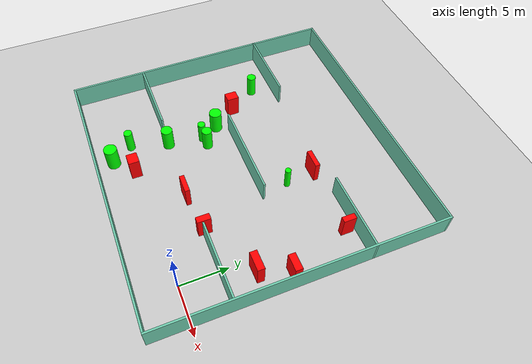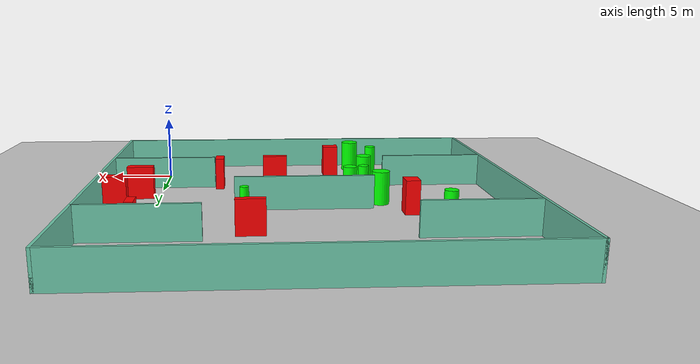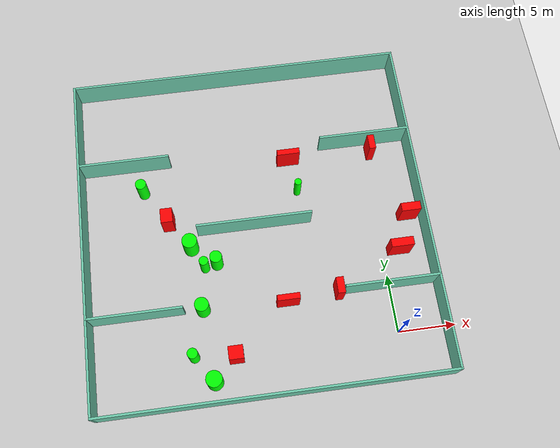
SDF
<sdf version="1.7">
 <world name="default">
  <light name="sun" type="directional">
   <pose>0 0 10 0 -0 0</pose>
   <diffuse>0.8 0.8 0.8 1</diffuse>
   <specular>0.2 0.2 0.2 1</specular>
   <attenuation>
    <range>1000</range>
    <constant>0.9</constant>
    <linear>0.01</linear>
    <quadratic>0.001</quadratic>
   </attenuation>
   <direction>-0.5 0.1 -0.9</direction>
   <spot><inner_angle>0</inner_angle><outer_angle>0</outer_angle><falloff>0</falloff></spot>
  </light>
  <model name="ground_plane">
   <static>1</static>
   <link name="link">
    <collision name="collision">
     <geometry><plane><normal>0 0 1</normal><size>100 100</size></plane></geometry>
     <surface>
      <contact><collide_bitmask>65535</collide_bitmask></contact>
      <friction><ode><mu>100</mu><mu2>50</mu2></ode></friction>
     </surface>
    </collision>
    <visual name="visual">
     <cast_shadows>0</cast_shadows>
     <geometry><plane><normal>0 0 1</normal><size>100 100</size></plane></geometry>
     <material>
      <script><uri>file://media/materials/scripts/gazebo.material</uri><name>Gazebo/Grey</name></script>
     </material>
    </visual>
   </link>
  </model>
  <gravity>0 0 -9.8</gravity>
  <magnetic_field>6e-06 2.3e-05 -4.2e-05</magnetic_field>
  <atmosphere type="adiabatic"/>
  <physics type="ode">
   <max_step_size>0.001</max_step_size>
   <real_time_factor>1</real_time_factor>
   <real_time_update_rate>1000</real_time_update_rate>
  </physics>
  <scene><ambient>0.4 0.4 0.4 1</ambient><background>0.7 0.7 0.7 1</background><shadows>1</shadows></scene>
  <spherical_coordinates>
   <surface_model>EARTH_WGS84</surface_model>
   <latitude_deg>0</latitude_deg>
   <longitude_deg>0</longitude_deg>
   <elevation>0</elevation>
   <heading_deg>0</heading_deg>
  </spherical_coordinates>
  <model name="my_base_walls">
   <link name="Wall_10">
    <collision name="Wall_10_Collision">
     <geometry><box><size>8.2 0.2 2.5</size></box></geometry>
     <pose>0 0 1.25 0 -0 0</pose>
    </collision>
    <visual name="Wall_10_Visual">
     <pose>0 0 1.25 0 -0 0</pose>
     <geometry><box><size>8.2 0.2 2.5</size></box></geometry>
     <material>
      <script><uri>file://media/materials/scripts/gazebo.material</uri><name>Gazebo/Grey</name></script>
      <ambient>0.435294 0.796078 0.67451 1</ambient>
     </material>
     <meta><layer>0</layer></meta>
    </visual>
    <pose>-11 -7 0 0 -0 0</pose>
   </link>
   <link name="Wall_12">
    <collision name="Wall_12_Collision">
     <geometry><box><size>8.2 0.2 2.5</size></box></geometry>
     <pose>0 0 1.25 0 -0 0</pose>
    </collision>
    <visual name="Wall_12_Visual">
     <pose>0 0 1.25 0 -0 0</pose>
     <geometry><box><size>8.2 0.2 2.5</size></box></geometry>
     <material>
      <script><uri>file://media/materials/scripts/gazebo.material</uri><name>Gazebo/Grey</name></script>
      <ambient>0.435294 0.796078 0.67451 1</ambient>
     </material>
     <meta><layer>0</layer></meta>
    </visual>
    <pose>-11 7 0 0 -0 0</pose>
   </link>
   <link name="Wall_14">
    <collision name="Wall_14_Collision">
     <geometry><box><size>8.2 0.2 2.5</size></box></geometry>
     <pose>0 0 1.25 0 -0 0</pose>
    </collision>
    <visual name="Wall_14_Visual">
     <pose>0 0 1.25 0 -0 0</pose>
     <geometry><box><size>8.2 0.2 2.5</size></box></geometry>
     <material>
      <script><uri>file://media/materials/scripts/gazebo.material</uri><name>Gazebo/Grey</name></script>
      <ambient>0.435294 0.796078 0.67451 1</ambient>
     </material>
     <meta><layer>0</layer></meta>
    </visual>
    <pose>11 7 0 0 -0 3.14159</pose>
   </link>
   <link name="Wall_16">
    <collision name="Wall_16_Collision">
     <geometry><box><size>10.2 0.2 2.5</size></box></geometry>
     <pose>0 0 1.25 0 -0 0</pose>
    </collision>
    <visual name="Wall_16_Visual">
     <pose>0 0 1.25 0 -0 0</pose>
     <geometry><box><size>10.2 0.2 2.5</size></box></geometry>
     <material>
      <script><uri>file://media/materials/scripts/gazebo.material</uri><name>Gazebo/Grey</name></script>
      <ambient>0.435294 0.796078 0.67451 1</ambient>
     </material>
     <meta><layer>0</layer></meta>
    </visual>
    <pose>0 0 0 0 -0 3.14159</pose>
   </link>
   <link name="Wall_2">
    <collision name="Wall_2_Collision">
     <geometry><box><size>30.2 0.2 2.5</size></box></geometry>
     <pose>0 0 1.25 0 -0 0</pose>
    </collision>
    <visual name="Wall_2_Visual">
     <pose>0 0 1.25 0 -0 0</pose>
     <geometry><box><size>30.2 0.2 2.5</size></box></geometry>
     <material>
      <script><uri>file://media/materials/scripts/gazebo.material</uri><name>Gazebo/Grey</name></script>
      <ambient>0.435294 0.796078 0.67451 1</ambient>
     </material>
     <meta><layer>0</layer></meta>
    </visual>
    <pose>0 -15 0 0 -0 3.14159</pose>
   </link>
   <link name="Wall_3">
    <collision name="Wall_3_Collision">
     <geometry><box><size>30.2 0.2 2.5</size></box></geometry>
     <pose>0 0 1.25 0 -0 0</pose>
    </collision>
    <visual name="Wall_3_Visual">
     <pose>0 0 1.25 0 -0 0</pose>
     <geometry><box><size>30.2 0.2 2.5</size></box></geometry>
     <material>
      <script><uri>file://media/materials/scripts/gazebo.material</uri><name>Gazebo/Grey</name></script>
      <ambient>0.435294 0.796078 0.67451 1</ambient>
     </material>
     <meta><layer>0</layer></meta>
    </visual>
    <pose>-15 0 0 0 -0 1.5708</pose>
   </link>
   <link name="Wall_4">
    <collision name="Wall_4_Collision">
     <geometry><box><size>30.2 0.2 2.5</size></box></geometry>
     <pose>0 0 1.25 0 -0 0</pose>
    </collision>
    <visual name="Wall_4_Visual">
     <pose>0 0 1.25 0 -0 0</pose>
     <geometry><box><size>30.2 0.2 2.5</size></box></geometry>
     <material>
      <script><uri>file://media/materials/scripts/gazebo.material</uri><name>Gazebo/Grey</name></script>
      <ambient>0.435294 0.796078 0.67451 1</ambient>
     </material>
     <meta><layer>0</layer></meta>
    </visual>
    <pose>0 15 0 0 -0 0</pose>
   </link>
   <link name="Wall_6">
    <collision name="Wall_6_Collision">
     <geometry><box><size>30.2 0.2 2.5</size></box></geometry>
     <pose>0 0 1.25 0 -0 0</pose>
    </collision>
    <visual name="Wall_6_Visual">
     <pose>0 0 1.25 0 -0 0</pose>
     <geometry><box><size>30.2 0.2 2.5</size></box></geometry>
     <material>
      <script><uri>file://media/materials/scripts/gazebo.material</uri><name>Gazebo/Grey</name></script>
      <ambient>0.435294 0.796078 0.67451 1</ambient>
     </material>
     <meta><layer>0</layer></meta>
    </visual>
    <pose>15 0 0 0 -0 1.5708</pose>
   </link>
   <link name="Wall_8">
    <collision name="Wall_8_Collision">
     <geometry><box><size>8.2 0.2 2.5</size></box></geometry>
     <pose>0 0 1.25 0 -0 0</pose>
    </collision>
    <visual name="Wall_8_Visual">
     <pose>0 0 1.25 0 -0 0</pose>
     <geometry><box><size>8.2 0.2 2.5</size></box></geometry>
     <material>
      <script><uri>file://media/materials/scripts/gazebo.material</uri><name>Gazebo/Grey</name></script>
      <ambient>0.435294 0.796078 0.67451 1</ambient>
     </material>
     <meta><layer>0</layer></meta>
    </visual>
    <pose>11 -7 0 0 -0 3.14159</pose>
   </link>
   <static>1</static>
   <pose>-11 11 0 0 -0 0</pose>
  </model>
  <model name="cylinder1">
   <static>1</static>
   <link name="link">
    <inertial>
     <mass>1</mass>
     <inertia><ixx>0.5</ixx><ixy>0</ixy><ixz>0</ixz><iyy>0.5</iyy><iyz>0</iyz><izz>1</izz></inertia>
    </inertial>
    <collision name="collision">
     <geometry><cylinder><radius>0.6618627928681131</radius><length>2.5</length></cylinder></geometry>
    </collision>
    <visual name="visual">
     <geometry><cylinder><radius>0.6618627928681131</radius><length>2.5</length></cylinder></geometry>
     <material>
      <ambient>0 1 0 1</ambient>
      <diffuse>0 1 0 1</diffuse>
      <specular>0.1 0.1 0.1 1</specular>
      <emissive>0 0 0 0</emissive>
     </material>
    </visual>
   </link>
   <pose>-16.800410565513587 9.71285285532618 1.25 0 0 0</pose>
  </model>
  <model name="cylinder2">
   <static>1</static>
   <link name="link">
    <inertial>
     <mass>1</mass>
     <inertia><ixx>0.5</ixx><ixy>0</ixy><ixz>0</ixz><iyy>0.5</iyy><iyz>0</iyz><izz>1</izz></inertia>
    </inertial>
    <collision name="collision">
     <geometry><cylinder><radius>0.6065801303295871</radius><length>2.5</length></cylinder></geometry>
    </collision>
    <visual name="visual">
     <geometry><cylinder><radius>0.6065801303295871</radius><length>2.5</length></cylinder></geometry>
     <material>
      <ambient>0 1 0 1</ambient>
      <diffuse>0 1 0 1</diffuse>
      <specular>0.1 0.1 0.1 1</specular>
      <emissive>0 0 0 0</emissive>
     </material>
    </visual>
   </link>
   <pose>-16.330799254094806 4.0157639094641375 1.25 0 0 0</pose>
  </model>
  <model name="cylinder3">
   <static>1</static>
   <link name="link">
    <inertial>
     <mass>1</mass>
     <inertia><ixx>0.5</ixx><ixy>0</ixy><ixz>0</ixz><iyy>0.5</iyy><iyz>0</iyz><izz>1</izz></inertia>
    </inertial>
    <collision name="collision">
     <geometry><cylinder><radius>0.39689668679347073</radius><length>2.5</length></cylinder></geometry>
    </collision>
    <visual name="visual">
     <geometry><cylinder><radius>0.39689668679347073</radius><length>2.5</length></cylinder></geometry>
     <material>
      <ambient>0 1 0 1</ambient>
      <diffuse>0 1 0 1</diffuse>
      <specular>0.1 0.1 0.1 1</specular>
      <emissive>0 0 0 0</emissive>
     </material>
    </visual>
   </link>
   <pose>-15.77087744319125 7.749730624857316 1.25 0 0 0</pose>
  </model>
  <model name="cylinder4">
   <static>1</static>
   <link name="link">
    <inertial>
     <mass>1</mass>
     <inertia><ixx>0.5</ixx><ixy>0</ixy><ixz>0</ixz><iyy>0.5</iyy><iyz>0</iyz><izz>1</izz></inertia>
    </inertial>
    <collision name="collision">
     <geometry><cylinder><radius>0.6910925307425808</radius><length>2.5</length></cylinder></geometry>
    </collision>
    <visual name="visual">
     <geometry><cylinder><radius>0.6910925307425808</radius><length>2.5</length></cylinder></geometry>
     <material>
      <ambient>0 1 0 1</ambient>
      <diffuse>0 1 0 1</diffuse>
      <specular>0.1 0.1 0.1 1</specular>
      <emissive>0 0 0 0</emissive>
     </material>
    </visual>
   </link>
   <pose>-15.954308895570989 -2.195364159689476 1.25 0 0 0</pose>
  </model>
  <model name="cylinder5">
   <static>1</static>
   <link name="link">
    <inertial>
     <mass>1</mass>
     <inertia><ixx>0.5</ixx><ixy>0</ixy><ixz>0</ixz><iyy>0.5</iyy><iyz>0</iyz><izz>1</izz></inertia>
    </inertial>
    <collision name="collision">
     <geometry><cylinder><radius>0.48190323943903796</radius><length>2.5</length></cylinder></geometry>
    </collision>
    <visual name="visual">
     <geometry><cylinder><radius>0.48190323943903796</radius><length>2.5</length></cylinder></geometry>
     <material>
      <ambient>0 1 0 1</ambient>
      <diffuse>0 1 0 1</diffuse>
      <specular>0.1 0.1 0.1 1</specular>
      <emissive>0 0 0 0</emissive>
     </material>
    </visual>
   </link>
   <pose>-20.570584834965498 15.52487850810283 1.25 0 0 0</pose>
  </model>
  <model name="cylinder6">
   <static>1</static>
   <link name="link">
    <inertial>
     <mass>1</mass>
     <inertia><ixx>0.5</ixx><ixy>0</ixy><ixz>0</ixz><iyy>0.5</iyy><iyz>0</iyz><izz>1</izz></inertia>
    </inertial>
    <collision name="collision">
     <geometry><cylinder><radius>0.4433445253581637</radius><length>2.5</length></cylinder></geometry>
    </collision>
    <visual name="visual">
     <geometry><cylinder><radius>0.4433445253581637</radius><length>2.5</length></cylinder></geometry>
     <material>
      <ambient>0 1 0 1</ambient>
      <diffuse>0 1 0 1</diffuse>
      <specular>0.1 0.1 0.1 1</specular>
      <emissive>0 0 0 0</emissive>
     </material>
    </visual>
   </link>
   <pose>-17.483808545519896 0.05714485979023465 1.25 0 0 0</pose>
  </model>
  <model name="cylinder7">
   <static>1</static>
   <link name="link">
    <inertial>
     <mass>1</mass>
     <inertia><ixx>0.5</ixx><ixy>0</ixy><ixz>0</ixz><iyy>0.5</iyy><iyz>0</iyz><izz>1</izz></inertia>
    </inertial>
    <collision name="collision">
     <geometry><cylinder><radius>0.3108771513890532</radius><length>2.5</length></cylinder></geometry>
    </collision>
    <visual name="visual">
     <geometry><cylinder><radius>0.3108771513890532</radius><length>2.5</length></cylinder></geometry>
     <material>
      <ambient>0 1 0 1</ambient>
      <diffuse>0 1 0 1</diffuse>
      <specular>0.1 0.1 0.1 1</specular>
      <emissive>0 0 0 0</emissive>
     </material>
    </visual>
   </link>
   <pose>-6.683509817816379 13.931991880633824 1.25 0 0 0</pose>
  </model>
  <model name="cylinder8">
   <static>1</static>
   <link name="link">
    <inertial>
     <mass>1</mass>
     <inertia><ixx>0.5</ixx><ixy>0</ixy><ixz>0</ixz><iyy>0.5</iyy><iyz>0</iyz><izz>1</izz></inertia>
    </inertial>
    <collision name="collision">
     <geometry><cylinder><radius>0.5357079983897282</radius><length>2.5</length></cylinder></geometry>
    </collision>
    <visual name="visual">
     <geometry><cylinder><radius>0.5357079983897282</radius><length>2.5</length></cylinder></geometry>
     <material>
      <ambient>0 1 0 1</ambient>
      <diffuse>0 1 0 1</diffuse>
      <specular>0.1 0.1 0.1 1</specular>
      <emissive>0 0 0 0</emissive>
     </material>
    </visual>
   </link>
   <pose>-14.700054372558384 7.98839677436669 1.25 0 0 0</pose>
  </model>
  <model name="box1">
   <static>1</static>
   <link name="link">
    <inertial>
     <mass>1</mass>
     <inertia><ixx>0.083</ixx><ixy>0</ixy><ixz>0</ixz><iyy>0.083</iyy><iyz>0</iyz><izz>0.083</izz></inertia>
    </inertial>
    <collision name="collision">
     <geometry><box><size>0.6499090518525013 1.3965738524176847 2.5</size></box></geometry>
    </collision>
    <visual name="visual">
     <geometry><box><size>0.6499090518525013 1.3965738524176847 2.5</size></box></geometry>
     <material>
      <ambient>1 0 0 1</ambient>
      <diffuse>1 0 0 1</diffuse>
      <specular>0.1 0.1 0.1 1</specular>
      <emissive>0 0 0 0</emissive>
     </material>
    </visual>
    <sensor name="my_contact" type="contact">
     <contact><collision>box_collision</collision><topic>__default_topic__</topic></contact>
    </sensor>
   </link>
   <pose>-4.528057178429872 4.135917879462891 1.25 0 0 0</pose>
  </model>
  <model name="box2">
   <static>1</static>
   <link name="link">
    <inertial>
     <mass>1</mass>
     <inertia><ixx>0.083</ixx><ixy>0</ixy><ixz>0</ixz><iyy>0.083</iyy><iyz>0</iyz><izz>0.083</izz></inertia>
    </inertial>
    <collision name="collision">
     <geometry><box><size>1.0521258183281046 1.2882863254926735 2.5</size></box></geometry>
    </collision>
    <visual name="visual">
     <geometry><box><size>1.0521258183281046 1.2882863254926735 2.5</size></box></geometry>
     <material>
      <ambient>1 0 0 1</ambient>
      <diffuse>1 0 0 1</diffuse>
      <specular>0.1 0.1 0.1 1</specular>
      <emissive>0 0 0 0</emissive>
     </material>
    </visual>
    <sensor name="my_contact" type="contact">
     <contact><collision>box_collision</collision><topic>__default_topic__</topic></contact>
    </sensor>
   </link>
   <pose>-18.573943552929883 12.300035054702342 1.25 0 0 0</pose>
  </model>
  <model name="box3">
   <static>1</static>
   <link name="link">
    <inertial>
     <mass>1</mass>
     <inertia><ixx>0.083</ixx><ixy>0</ixy><ixz>0</ixz><iyy>0.083</iyy><iyz>0</iyz><izz>0.083</izz></inertia>
    </inertial>
    <collision name="collision">
     <geometry><box><size>1.954150863091308 0.5020596146010998 2.5</size></box></geometry>
    </collision>
    <visual name="visual">
     <geometry><box><size>1.954150863091308 0.5020596146010998 2.5</size></box></geometry>
     <material>
      <ambient>1 0 0 1</ambient>
      <diffuse>1 0 0 1</diffuse>
      <specular>0.1 0.1 0.1 1</specular>
      <emissive>0 0 0 0</emissive>
     </material>
    </visual>
    <sensor name="my_contact" type="contact">
     <contact><collision>box_collision</collision><topic>__default_topic__</topic></contact>
    </sensor>
   </link>
   <pose>-9.01911871506304 3.703106733701297 1.25 0 0 0</pose>
  </model>
  <model name="box4">
   <static>1</static>
   <link name="link">
    <inertial>
     <mass>1</mass>
     <inertia><ixx>0.083</ixx><ixy>0</ixy><ixz>0</ixz><iyy>0.083</iyy><iyz>0</iyz><izz>0.083</izz></inertia>
    </inertial>
    <collision name="collision">
     <geometry><box><size>2.028551711169819 0.5006419913238026 2.5</size></box></geometry>
    </collision>
    <visual name="visual">
     <geometry><box><size>2.028551711169819 0.5006419913238026 2.5</size></box></geometry>
     <material>
      <ambient>1 0 0 1</ambient>
      <diffuse>1 0 0 1</diffuse>
      <specular>0.1 0.1 0.1 1</specular>
      <emissive>0 0 0 0</emissive>
     </material>
    </visual>
    <sensor name="my_contact" type="contact">
     <contact><collision>box_collision</collision><topic>__default_topic__</topic></contact>
    </sensor>
   </link>
   <pose>-7.132760401837125 16.97529744045974 1.25 0 0 0</pose>
  </model>
  <model name="box5">
   <static>1</static>
   <link name="link">
    <inertial>
     <mass>1</mass>
     <inertia><ixx>0.083</ixx><ixy>0</ixy><ixz>0</ixz><iyy>0.083</iyy><iyz>0</iyz><izz>0.083</izz></inertia>
    </inertial>
    <collision name="collision">
     <geometry><box><size>1.247485369532932 1.1220547487809556 2.5</size></box></geometry>
    </collision>
    <visual name="visual">
     <geometry><box><size>1.247485369532932 1.1220547487809556 2.5</size></box></geometry>
     <material>
      <ambient>1 0 0 1</ambient>
      <diffuse>1 0 0 1</diffuse>
      <specular>0.1 0.1 0.1 1</specular>
      <emissive>0 0 0 0</emissive>
     </material>
    </visual>
    <sensor name="my_contact" type="contact">
     <contact><collision>box_collision</collision><topic>__default_topic__</topic></contact>
    </sensor>
   </link>
   <pose>-13.959343988617594 -0.3112295269413585 1.25 0 0 0</pose>
  </model>
  <model name="box6">
   <static>1</static>
   <link name="link">
    <inertial>
     <mass>1</mass>
     <inertia><ixx>0.083</ixx><ixy>0</ixy><ixz>0</ixz><iyy>0.083</iyy><iyz>0</iyz><izz>0.083</izz></inertia>
    </inertial>
    <collision name="collision">
     <geometry><box><size>0.5866213407378558 1.3321658287187361 2.5</size></box></geometry>
    </collision>
    <visual name="visual">
     <geometry><box><size>0.5866213407378558 1.3321658287187361 2.5</size></box></geometry>
     <material>
      <ambient>1 0 0 1</ambient>
      <diffuse>1 0 0 1</diffuse>
      <specular>0.1 0.1 0.1 1</specular>
      <emissive>0 0 0 0</emissive>
     </material>
    </visual>
    <sensor name="my_contact" type="contact">
     <contact><collision>box_collision</collision><topic>__default_topic__</topic></contact>
    </sensor>
   </link>
   <pose>0.5135849612474495 16.97692359306205 1.25 0 0 0</pose>
  </model>
  <model name="box7">
   <static>1</static>
   <link name="link">
    <inertial>
     <mass>1</mass>
     <inertia><ixx>0.083</ixx><ixy>0</ixy><ixz>0</ixz><iyy>0.083</iyy><iyz>0</iyz><izz>0.083</izz></inertia>
    </inertial>
    <collision name="collision">
     <geometry><box><size>1.983402365634525 0.7356917010477226 2.5</size></box></geometry>
    </collision>
    <visual name="visual">
     <geometry><box><size>1.983402365634525 0.7356917010477226 2.5</size></box></geometry>
     <material>
      <ambient>1 0 0 1</ambient>
      <diffuse>1 0 0 1</diffuse>
      <specular>0.1 0.1 0.1 1</specular>
      <emissive>0 0 0 0</emissive>
     </material>
    </visual>
    <sensor name="my_contact" type="contact">
     <contact><collision>box_collision</collision><topic>__default_topic__</topic></contact>
    </sensor>
   </link>
   <pose>1.399053313203165 7.20928955422518 1.25 0 0 0</pose>
  </model>
  <model name="box8">
   <static>1</static>
   <link name="link">
    <inertial>
     <mass>1</mass>
     <inertia><ixx>0.083</ixx><ixy>0</ixy><ixz>0</ixz><iyy>0.083</iyy><iyz>0</iyz><izz>0.083</izz></inertia>
    </inertial>
    <collision name="collision">
     <geometry><box><size>1.7179843070118284 0.7363819841525876 2.5</size></box></geometry>
    </collision>
    <visual name="visual">
     <geometry><box><size>1.7179843070118284 0.7363819841525876 2.5</size></box></geometry>
     <material>
      <ambient>1 0 0 1</ambient>
      <diffuse>1 0 0 1</diffuse>
      <specular>0.1 0.1 0.1 1</specular>
      <emissive>0 0 0 0</emissive>
     </material>
    </visual>
    <sensor name="my_contact" type="contact">
     <contact><collision>box_collision</collision><topic>__default_topic__</topic></contact>
    </sensor>
   </link>
   <pose>2.7826968836477555 10.335921640681924 1.25 0 0 0</pose>
  </model>
 </world>
</sdf>
